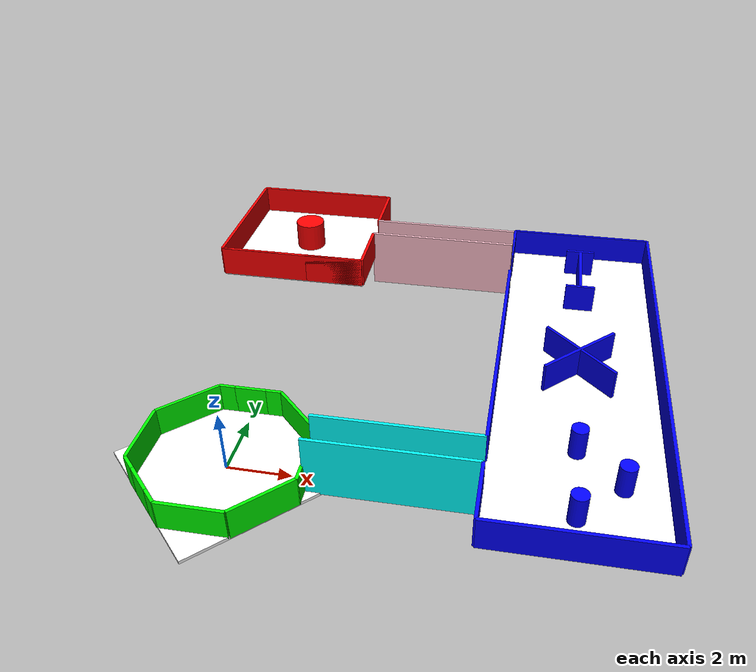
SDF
<?xml version="1.0"?>
<sdf version='1.5'>
  <world name='7hd'>

    <!-- sun -->
    <include>
      <uri>model://sun</uri>
    </include>

    <!-- camera -->
    <gui fullscreen='0'>
      <camera name='user_camera'>
        <pose>-4 0 1.5 0 0 0</pose>
        <view_controller>orbit</view_controller>
      </camera>
    </gui>

    <!-- ========== GREEN ROOM ========== -->
    <model name="room_green">
      <static>true</static>

      <!-- floor -->
      <link name="floor">
        <collision name="coll">
          <geometry>
            <box>
              <size>5 5 0.1</size>
            </box>
          </geometry>
        </collision>
        <visual name="vis">
          <geometry>
            <box>
              <size>5 5 0.1</size>
            </box>
          </geometry>
          <material>
            <ambient>1 1 1 1</ambient>   <!-- White -->
            <diffuse>1 1 1 1</diffuse>
          </material>
        </visual>
        <pose>0 0 0 0 0 0.7854</pose>
      </link>

      <!-- back wall -->
      <link name="wall_back">
        <collision name="coll">
          <geometry>
            <box>
              <size>0.1 2 1</size>
            </box>
          </geometry>
        </collision>
        <visual name="vis">
          <geometry>
            <box>
              <size>0.1 2 1</size>
            </box>
          </geometry>
          <material>
            <ambient>0 1 0 1</ambient>   <!-- Green -->
            <diffuse>0 1 0 1</diffuse>
          </material>
        </visual>
        <pose>-2.5 0 0.5 0 0 0</pose>
      </link>

      <!-- left wall -->
      <link name="wall_left_left">
        <collision name="coll">
          <geometry>
            <box>
              <size>0.55 0.1 1</size>
            </box>
          </geometry>
        </collision>
        <visual name="vis">
          <geometry>
            <box>
              <size>0.55 0.1 1</size>
            </box>
          </geometry>
          <material>
            <ambient>0 1 0 1</ambient>   <!-- Green -->
            <diffuse>0 1 0 1</diffuse>
          </material>
        </visual>
        <pose>-0.75 2.5 0.5 0 0 0</pose>
      </link>
      <link name="wall_left_right">
        <collision name="coll">
          <geometry>
            <box>
              <size>0.55 0.1 1</size>
            </box>
          </geometry>
        </collision>
        <visual name="vis">
          <geometry>
            <box>
              <size>0.55 0.1 1</size>
            </box>
          </geometry>
          <material>
            <ambient>0 1 0 1</ambient>   <!-- Green -->
            <diffuse>0 1 0 1</diffuse>
          </material>
        </visual>
        <pose>0.75 2.5 0.5 0 0 0</pose>
      </link>
      <!-- right wall -->
      <link name="wall_right">
        <collision name="coll">
          <geometry>
            <box>
              <size>2 0.1 1</size>
            </box>
          </geometry>
        </collision>
        <visual name="vis">
          <geometry>
            <box>
              <size>2 0.1 1</size>
            </box>
          </geometry>
          <material>
            <ambient>0 1 0 1</ambient>   <!-- Green -->
            <diffuse>0 1 0 1</diffuse>
          </material>
        </visual>
        <pose>0 -2.5 0.5 0 0 0</pose>
      </link>

      <link name="wall_left_tmp">
        <collision name="coll">
          <geometry>
            <box>
              <size>1 0.1 1</size>
            </box>
          </geometry>
        </collision>
        <visual name="vis">
          <geometry>
            <box>
              <size>1 0.1 1</size>
            </box>
          </geometry>
          <material>
            <ambient>0 1 0 1</ambient>   <!-- Green -->
            <diffuse>0 1 0 1</diffuse>
          </material>
        </visual>
        <pose>0 2.5 0.5 0 0 0</pose>
      </link>

      <!-- front wall -->
      <link name="wall_front_leftSeg">
        <collision name="coll">
          <geometry>
            <box>
              <size>0.1 0.55 1</size>
            </box>
          </geometry>
        </collision>
        <visual name="vis">
          <geometry>
            <box>
              <size>0.1 0.55 1</size>
            </box>
          </geometry>
          <material>
            <ambient>0 1 0 1</ambient>   <!-- Green -->
            <diffuse>0 1 0 1</diffuse>
          </material>
        </visual>
        <pose> 2.5 -0.75 0.5 0 0 0</pose>
      </link>
      <link name="wall_front_rightSeg">
        <collision name="coll">
          <geometry>
            <box>
              <size>0.1 0.55 1</size>
            </box>
          </geometry>
        </collision>
        <visual name="vis">
          <geometry>
            <box>
              <size>0.1 0.55 1</size>
            </box>
          </geometry>
          <material>
            <ambient>0 1 0 1</ambient>   <!-- Green -->
            <diffuse>0 1 0 1</diffuse>
          </material>
        </visual>
        <pose> 2.5 0.75 0.5 0 0 0</pose>
      </link>

      <link name="wall_ne">
        <collision name="coll">
          <geometry>
            <box>
              <size>2.1 0.1 1</size>
            </box>
          </geometry>
        </collision>
        <visual name="vis">
          <geometry>
            <box>
              <size>2.1 0.1 1</size>
            </box>
          </geometry>
          <material>
            <ambient>0 1 0 1</ambient>   <!-- Green -->
            <diffuse>0 1 0 1</diffuse>
          </material>
        </visual>
        <pose> 1.75 -1.75 0.5 0 0 0.7854</pose>
      </link>

      <link name="wall_sw">
        <collision name="coll">
          <geometry>
            <box>
              <size>2.1 0.1 1</size>
            </box>
          </geometry>
        </collision>
        <visual name="vis">
          <geometry>
            <box>
              <size>2.1 0.1 1</size>
            </box>
          </geometry>
          <material>
            <ambient>0 1 0 1</ambient>   <!-- Green -->
            <diffuse>0 1 0 1</diffuse>
          </material>
        </visual>
        <pose> -1.75 1.75 0.5 0 0 0.7854</pose>
      </link>

      <link name="wall_nw">
        <collision name="coll">
          <geometry>
            <box>
              <size>2.1 0.1 1</size>
            </box>
          </geometry>
        </collision>
        <visual name="vis">
          <geometry>
            <box>
              <size>2.1 0.1 1</size>
            </box>
          </geometry>
          <material>
            <ambient>0 1 0 1</ambient>   <!-- Green -->
            <diffuse>0 1 0 1</diffuse>
          </material>
        </visual>
        <pose> 1.75 1.75 0.5 0 0 2.356</pose>
      </link>

      <link name="wall_se_left">
        <collision name="coll">
          <geometry>
            <box>
              <size>0.55 0.1 1</size>
            </box>
          </geometry>
        </collision>
        <visual name="vis">
          <geometry>
            <box>
              <size>0.55 0.1 1</size>
            </box>
          </geometry>
          <material>
            <ambient>0 1 0 1</ambient>
            <diffuse>0 1 0 1</diffuse>
          </material>
        </visual>
        <pose> -1.2 -2.3 0.5 0 0 2.356</pose>
      </link>

      <link name="wall_se_right">
        <collision name="coll">
          <geometry>
            <box>
              <size>0.55 0.1 1</size>
            </box>
          </geometry>
        </collision>
        <visual name="vis">
          <geometry>
            <box>
              <size>0.55 0.1 1</size>
            </box>
          </geometry>
          <material>
            <ambient>0 1 0 1</ambient>
            <diffuse>0 1 0 1</diffuse>
          </material>
        </visual>
        <pose> -2.3 -1.2 0.5 0 0 2.356</pose>
      </link>

      <link name="wall_se_mid">
        <collision name="coll">
          <geometry>
            <box>
              <size>1 0.1 1</size>
            </box>
          </geometry>
        </collision>
        <visual name="vis">
          <geometry>
            <box>
              <size>1 0.1 1</size>
            </box>
          </geometry>
          <material>
            <ambient>0 1 0 1</ambient>
            <diffuse>0 1 0 1</diffuse>
          </material>
        </visual>
        <pose> -1.75 -1.75 0.5 0 0 2.356</pose>
      </link>

      <pose>0 0 0 0 0 0</pose>
    </model>

    <!-- ========== RED ROOM ========== -->
    <model name="room_red">
      <static>true</static>

      <!-- floor -->
      <link name="floor">
        <collision name="coll">
          <geometry>
            <box>
              <size>5 5 0.1</size>
            </box>
          </geometry>
        </collision>
        <visual name="vis">
          <geometry>
            <box>
              <size>5 5 0.1</size>
            </box>
          </geometry>
          <material>
            <ambient>1 1 1 1</ambient>   <!-- White -->
            <diffuse>1 1 1 1</diffuse>
          </material>
        </visual>
        <pose>0 0 0 0 0 0</pose>
      </link>

      <!-- back wall -->
      <link name="wall_back">
        <collision name="coll">
          <geometry>
            <box>
              <size>0.1 5 1</size>
            </box>
          </geometry>
        </collision>
        <visual name="vis">
          <geometry>
            <box>
              <size>0.1 5 1</size>
            </box>
          </geometry>
          <material>
            <ambient>1 0 0 1</ambient>   <!-- Red -->
            <diffuse>1 0 0 1</diffuse>
          </material>
        </visual>
        <pose>-2.5 0 0.5 0 0 0</pose>
      </link>
      <!-- left wall -->
      <link name="wall_left">
        <collision name="coll">
          <geometry>
            <box>
              <size>5 0.1 1</size>
            </box>
          </geometry>
        </collision>
        <visual name="vis">
          <geometry>
            <box>
              <size>5 0.1 1</size>
            </box>
          </geometry>
          <material>
            <ambient>1 0 0 1</ambient>   <!-- Red -->
            <diffuse>1 0 0 1</diffuse>
          </material>
        </visual>
        <pose>0 2.5 0.5 0 0 0</pose>
      </link>
      <link name="wall_right_tmp">
        <collision name="coll">
          <geometry>
            <box>
              <size>5 0.1 1</size>
            </box>
          </geometry>
        </collision>
        <visual name="vis">
          <geometry>
            <box>
              <size>5 0.1 1</size>
            </box>
          </geometry>
          <material>
            <ambient>1 0 0 1</ambient>   <!-- Red -->
            <diffuse>1 0 0 1</diffuse>
          </material>
        </visual>
        <pose>0 -2.5 0.5 0 0 0</pose>
      </link>
      <!-- right wall -->
      <link name="wall_right_left">
        <collision name="coll">
          <geometry>
            <box>
              <size>2 0.1 1</size>
            </box>
          </geometry>
        </collision>
        <visual name="vis">
          <geometry>
            <box>
              <size>2 0.1 1</size>
            </box>
          </geometry>
          <material>
            <ambient>1 0 0 1</ambient>   <!-- Red -->
            <diffuse>1 0 0 1</diffuse>
          </material>
        </visual>
        <pose>-1.5 -2.5 0.5 0 0 0</pose>
      </link>
      <link name="wall_right_right">
        <collision name="coll">
          <geometry>
            <box>
              <size>2 0.1 1</size>
            </box>
          </geometry>
        </collision>
        <visual name="vis">
          <geometry>
            <box>
              <size>2 0.1 1</size>
            </box>
          </geometry>
          <material>
            <ambient>1 0 0 1</ambient>   <!-- Red -->
            <diffuse>1 0 0 1</diffuse>
          </material>
        </visual>
        <pose>1.5 -2.5 0.5 0 0 0</pose>
      </link>

      <!-- front wall -->
      <link name="wall_front_leftSeg">
        <collision name="coll">
          <geometry>
            <box>
              <size>0.1 2 1</size>
            </box>
          </geometry>
        </collision>
        <visual name="vis">
          <geometry>
            <box>
              <size>0.1 2 1</size>
            </box>
          </geometry>
          <material>
            <ambient>1 0 0 1</ambient>   <!-- Red -->
            <diffuse>1 0 0 1</diffuse>
          </material>
        </visual>
        <pose> 2.5 -1.5 0.5 0 0 0</pose>
      </link>
      <link name="wall_front_rightSeg">
        <collision name="coll">
          <geometry>
            <box>
              <size>0.1 2 1</size>
            </box>
          </geometry>
        </collision>
        <visual name="vis">
          <geometry>
            <box>
              <size>0.1 2 1</size>
            </box>
          </geometry>
          <material>
            <ambient>1 0 0 1</ambient>   <!-- Red -->
            <diffuse>1 0 0 1</diffuse>
          </material>
        </visual>
        <pose> 2.5 1.5 0.5 0 0 0</pose>
      </link>

      <link name='cylinder'>
        <collision name='collision'>
          <geometry>
            <cylinder>
              <radius>0.5</radius>
              <length>1</length>
            </cylinder>
          </geometry>
        </collision>
        <visual name='visual'>
          <geometry>
            <cylinder>
              <radius>0.5</radius>
              <length>1</length>
            </cylinder>
          </geometry>
          <material>
            <ambient>1 0 0 1</ambient>   <!-- Red -->
            <diffuse>1 0 0 1</diffuse>
          </material>
        </visual>
        <pose>0 0 0.5 0 0 0</pose>
      </link>

      <!-- whole room offset -->
      <pose>0 10 2 0 0 0</pose>
    </model>

    <!-- ========== BLUE ROOM ========== -->
    <model name="room_blue">
      <static>true</static>

      <!-- floor -->
      <link name="floor">
        <collision name="coll">
          <geometry>
            <box>
              <size>5 15 0.1</size>
            </box>
          </geometry>
        </collision>
        <visual name="vis">
          <geometry>
            <box>
              <size>5 15 0.1</size>
            </box>
          </geometry>
          <material>
            <ambient>1 1 1 1</ambient>   <!-- White -->
            <diffuse>1 1 1 1</diffuse>
          </material>
        </visual>
        <pose>0 0 0 0 0 0</pose>
      </link>

      <!-- back wall -->
      <link name="wall_back">
        <collision name="coll">
          <geometry>
            <box>
              <size>0.1 15 1</size>
            </box>
          </geometry>
        </collision>
        <visual name="vis">
          <geometry>
            <box>
              <size>0.1 15 1</size>
            </box>
          </geometry>
          <material>
            <ambient>0 0 1 1</ambient>   <!-- Blue -->
            <diffuse>0 0 1 1</diffuse>
          </material>
        </visual>
        <pose>2.5 0 0.5 0 0 0</pose>
      </link>
      <!-- left wall -->
      <link name="wall_left">
        <collision name="coll">
          <geometry>
            <box>
              <size>5 0.1 1</size>
            </box>
          </geometry>
        </collision>
        <visual name="vis">
          <geometry>
            <box>
              <size>5 0.1 1</size>
            </box>
          </geometry>
          <material>
            <ambient>0 0 1 1</ambient>   <!-- Blue -->
            <diffuse>0 0 1 1</diffuse>
          </material>
        </visual>
        <pose>0 -7.5 0.5 0 0 0</pose>
      </link>
      <!-- right wall -->
      <link name="wall_right">
        <collision name="coll">
          <geometry>
            <box>
              <size>5 0.1 1</size>
            </box>
          </geometry>
        </collision>
        <visual name="vis">
          <geometry>
            <box>
              <size>5 0.1 1</size>
            </box>
          </geometry>
          <material>
            <ambient>0 0 1 1</ambient>   <!-- Blue -->
            <diffuse>0 0 1 1</diffuse>
          </material>
        </visual>
        <pose>0 7.5 0.5 0 0 0</pose>
      </link>

      <!-- front wall -->
      <link name="wall_front_leftSeg">
        <collision name="coll">
          <geometry>
            <box>
              <size>0.1 2 1</size>
            </box>
          </geometry>
        </collision>
        <visual name="vis">
          <geometry>
            <box>
              <size>0.1 2 1</size>
            </box>
          </geometry>
          <material>
            <ambient>0 0 1 1</ambient>   <!-- Blue -->
            <diffuse>0 0 1 1</diffuse>
          </material>
        </visual>
        <pose> -2.5 -6.5 0.5 0 0 0</pose>
      </link>
      <link name="wall_front_rightSeg">
        <collision name="coll">
          <geometry>
            <box>
              <size>0.1 2 1</size>
            </box>
          </geometry>
        </collision>
        <visual name="vis">
          <geometry>
            <box>
              <size>0.1 2 1</size>
            </box>
          </geometry>
          <material>
            <ambient>0 0 1 1</ambient>   <!-- Blue -->
            <diffuse>0 0 1 1</diffuse>
          </material>
        </visual>
        <pose> -2.5 6.5 0.5 0 0 0</pose>
      </link>
      <link name="wall_front_middleSeg">
        <collision name="coll">
          <geometry>
            <box>
              <size>0.1 9 1</size>
            </box>
          </geometry>
        </collision>
        <visual name="vis">
          <geometry>
            <box>
              <size>0.1 9 1</size>
            </box>
          </geometry>
          <material>
            <ambient>0 0 1 1</ambient>   <!-- Blue -->
            <diffuse>0 0 1 1</diffuse>
          </material>
        </visual>
        <pose> -2.5 0 0.5 0 0 0</pose>
      </link>

      <link name='cylinder1'>
        <collision name='collision'>
          <geometry>
            <cylinder>
              <radius>0.25</radius>
              <length>1</length>
            </cylinder>
          </geometry>
        </collision>
        <visual name='visual'>
          <geometry>
            <cylinder>
              <radius>0.25</radius>
              <length>1</length>
            </cylinder>
          </geometry>
          <material>
            <ambient>0 0 1 1</ambient>
            <diffuse>0 0 1 1</diffuse>
          </material>
        </visual>
        <pose>0 -3.75 0.5 0 0 0</pose>
      </link>

      <link name='cylinder2'>
        <collision name='collision'>
          <geometry>
            <cylinder>
              <radius>0.25</radius>
              <length>1</length>
            </cylinder>
          </geometry>
        </collision>
        <visual name='visual'>
          <geometry>
            <cylinder>
              <radius>0.25</radius>
              <length>1</length>
            </cylinder>
          </geometry>
          <material>
            <ambient>0 0 1 1</ambient>
            <diffuse>0 0 1 1</diffuse>
          </material>
        </visual>
        <pose>1.25 -5 0.5 0 0 0</pose>
      </link>

      <link name='cylinder4'>
        <collision name='collision'>
          <geometry>
            <cylinder>
              <radius>0.25</radius>
              <length>1</length>
            </cylinder>
          </geometry>
        </collision>
        <visual name='visual'>
          <geometry>
            <cylinder>
              <radius>0.25</radius>
              <length>1</length>
            </cylinder>
          </geometry>
          <material>
            <ambient>0 0 1 1</ambient>
            <diffuse>0 0 1 1</diffuse>
          </material>
        </visual>
        <pose>0 -6.25 0.5 0 0 0</pose>
      </link>

      <link name="cross1">
        <collision name="coll">
          <geometry>
            <box>
              <size>3 0.1 1</size>
            </box>
          </geometry>
        </collision>
        <visual name="vis">
          <geometry>
            <box>
              <size>3 0.1 1</size>
            </box>
          </geometry>
          <material>
            <ambient>0 0 1 1</ambient>   <!-- Blue -->
            <diffuse>0 0 1 1</diffuse>
          </material>
        </visual>
        <pose> 0 0 0.5 0 0 0.7854</pose>
      </link>

      <link name="cross2">
        <collision name="coll">
          <geometry>
            <box>
              <size>3 0.1 1</size>
            </box>
          </geometry>
        </collision>
        <visual name="vis">
          <geometry>
            <box>
              <size>3 0.1 1</size>
            </box>
          </geometry>
          <material>
            <ambient>0 0 1 1</ambient>   <!-- Blue -->
            <diffuse>0 0 1 1</diffuse>
          </material>
        </visual>
        <pose> 0 0 0.5 0 0 -0.7854</pose>
      </link>

      <link name="wall1">
        <collision name="coll">
          <geometry>
            <box>
              <size>1 0.1 1</size>
            </box>
          </geometry>
        </collision>
        <visual name="vis">
          <geometry>
            <box>
              <size>1 0.1 1</size>
            </box>
          </geometry>
          <material>
            <ambient>0 0 1 1</ambient>   <!-- Blue -->
            <diffuse>0 0 1 1</diffuse>
          </material>
        </visual>
        <pose> 0 3.75 0.5 0 0 0</pose>
      </link>

      <link name="wall2">
        <collision name="coll">
          <geometry>
            <box>
              <size>1 0.1 1</size>
            </box>
          </geometry>
        </collision>
        <visual name="vis">
          <geometry>
            <box>
              <size>1 0.1 1</size>
            </box>
          </geometry>
          <material>
            <ambient>0 0 1 1</ambient>   <!-- Blue -->
            <diffuse>0 0 1 1</diffuse>
          </material>
        </visual>
        <pose> 0 6.25 0.5 0 0 0</pose>
      </link>

      <link name="wall3">
        <collision name="coll">
          <geometry>
            <box>
              <size>0.1 2.5 1</size>
            </box>
          </geometry>
        </collision>
        <visual name="vis">
          <geometry>
            <box>
              <size>0.1 2.5 1</size>
            </box>
          </geometry>
          <material>
            <ambient>0 0 1 1</ambient>   <!-- Blue -->
            <diffuse>0 0 1 1</diffuse>
          </material>
        </visual>
        <pose> 0 5 0.5 0 0 0</pose>
      </link>

      <!-- whole room offset -->
      <pose>10 5 1 0 0 0</pose>
    </model>

    <model name="ramp_green_to_blue">
      <static>true</static>
      <link name="ramp">
        <collision name="coll">
          <geometry>
            <box>
              <size>5.11 1 0.1</size>
            </box>
          </geometry>
        </collision>
        <visual name="vis">
          <geometry>
            <box>
              <size>5.11 1 0.1</size>
            </box>
          </geometry>
          <material>
            <ambient>0 1 1 1</ambient>
            <diffuse>0 1 1 1</diffuse>
          </material>
        </visual>
        <pose>0 0 0 0 -0.1974 0</pose>
      </link>

      <link name="wall_left">
        <collision name="coll">
          <geometry>
            <box>
              <size>5 0.1 2</size>
            </box>
          </geometry>
        </collision>
        <visual name="vis">
          <geometry>
            <box>
              <size>5 0.1 2</size>
            </box>
          </geometry>
          <material>
            <ambient>0 1 1 1</ambient>
            <diffuse>0 1 1 1</diffuse>
          </material>
        </visual>
        <pose> 0 0.5 0.5 0 0 0</pose>
      </link>

      <link name="wall_right">
        <collision name="coll">
          <geometry>
            <box>
              <size>5 0.1 2</size>
            </box>
          </geometry>
        </collision>
        <visual name="vis">
          <geometry>
            <box>
              <size>5 0.1 2</size>
            </box>
          </geometry>
          <material>
            <ambient>0 1 1 1</ambient>
            <diffuse>0 1 1 1</diffuse>
          </material>
        </visual>
        <pose> 0 -0.5 0.5 0 0 0</pose>
      </link>

      <pose>5 0 0.5 0 0 0</pose>
    </model>

    <model name="ramp_blue_to_red">
      <static>true</static>
      <link name="ramp">
        <collision name="coll">
          <geometry>
            <box>
              <size>5.11 1 0.1</size>
            </box>
          </geometry>
        </collision>
        <visual name="vis">
          <geometry>
            <box>
              <size>5.11 1 0.1</size>
            </box>
          </geometry>
          <material>
            <ambient>1 0.75 0.8 1</ambient>
            <diffuse>1 0.75 0.8 1</diffuse>
          </material>
        </visual>
        <pose>0 0 0 0 0.1974 0</pose>
      </link>

      <link name="wall_left">
        <collision name="coll">
          <geometry>
            <box>
              <size>5 0.1 2</size>
            </box>
          </geometry>
        </collision>
        <visual name="vis">
          <geometry>
            <box>
              <size>5 0.1 2</size>
            </box>
          </geometry>
          <material>
            <ambient>1 0.75 0.8 1</ambient>
            <diffuse>1 0.75 0.8 1</diffuse>
          </material>
        </visual>
        <pose> 0 0.5 0.5 0 0 0</pose>
      </link>

      <link name="wall_right">
        <collision name="coll">
          <geometry>
            <box>
              <size>5 0.1 2</size>
            </box>
          </geometry>
        </collision>
        <visual name="vis">
          <geometry>
            <box>
              <size>5 0.1 2</size>
            </box>
          </geometry>
          <material>
            <ambient>1 0.75 0.8 1</ambient>
            <diffuse>1 0.75 0.8 1</diffuse>
          </material>
        </visual>
        <pose> 0 -0.5 0.5 0 0 0</pose>
      </link>

      <pose>5 10 1.5 0 0 0</pose>
    </model>

  </world>
</sdf>
